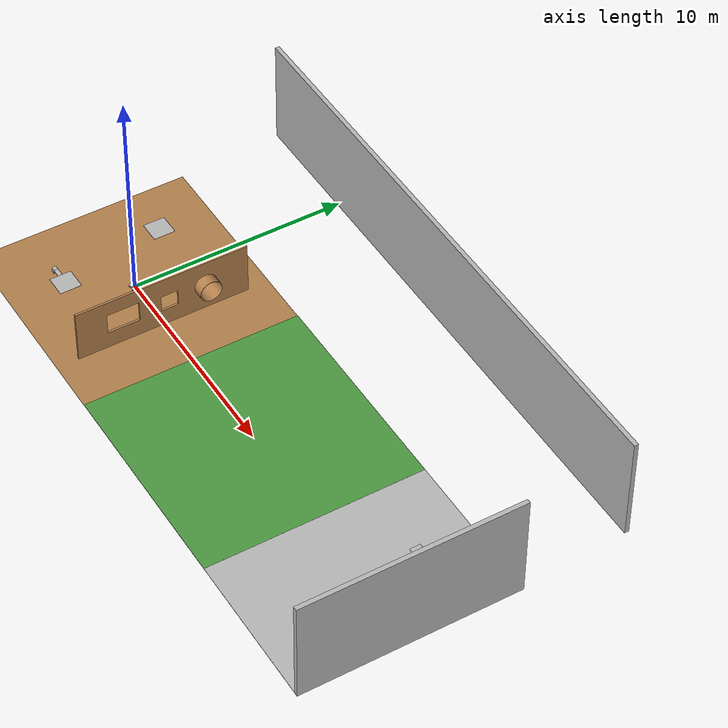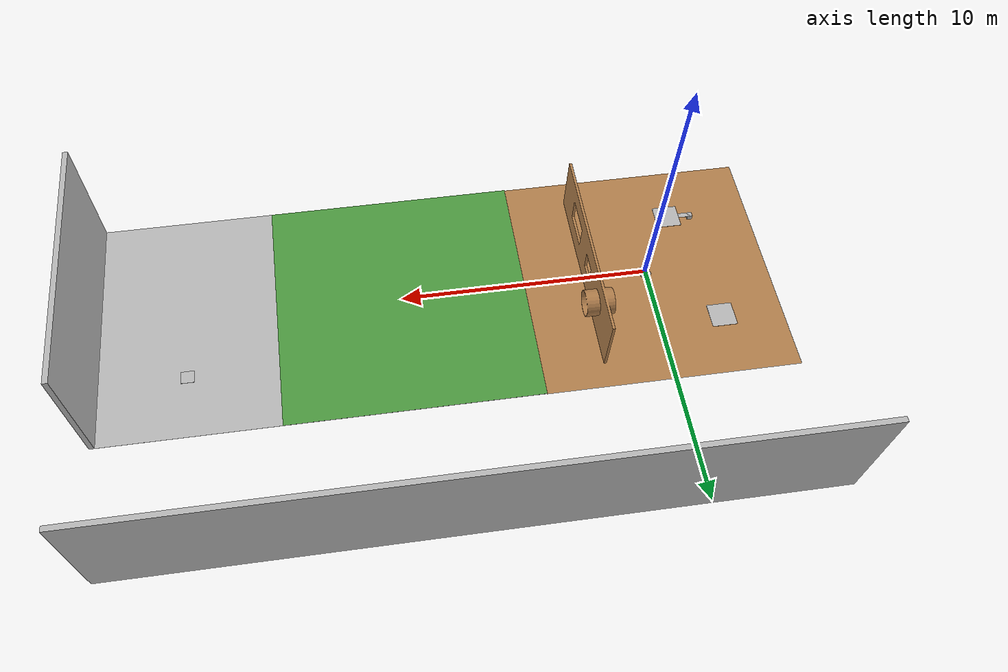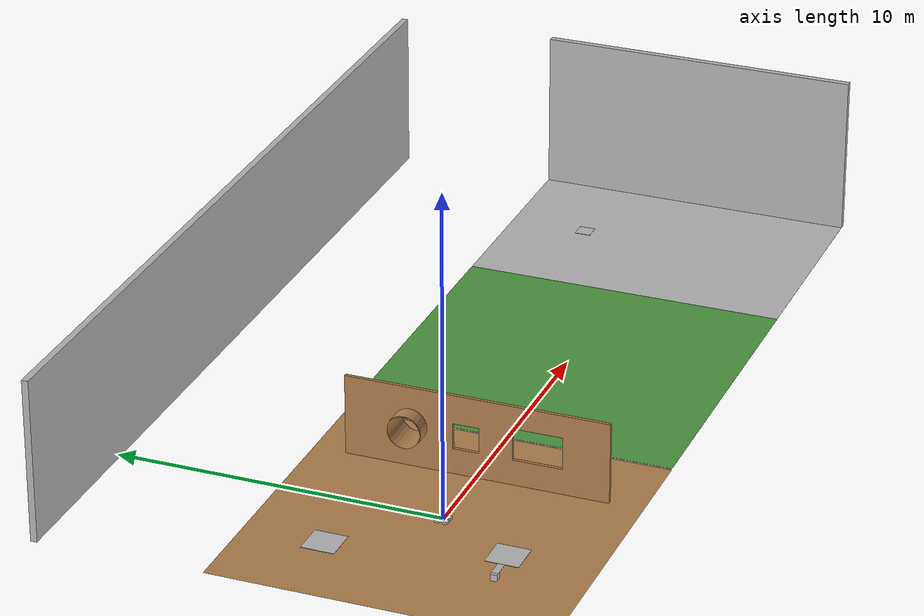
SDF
<sdf version="1.6">
 <world name="imav_world">
  <light name="sun" type="directional">
   <pose>0 10 0 0 0 -1.57079632679</pose>
   <diffuse>0.8 0.8 0.8 1</diffuse>
   <specular>0.2 0.2 0.2 1</specular>
   <attenuation>
    <range>1000</range>
    <constant>0.9</constant>
    <linear>0.01</linear>
    <quadratic>0.001</quadratic>
   </attenuation>
   <direction>-0.5 0.1 -0.9</direction>
  </light>
  <spherical_coordinates>
   <surface_model>EARTH_WGS84</surface_model>
   <latitude_deg>51.9906</latitude_deg>
   <longitude_deg>4.37679</longitude_deg>
   <elevation>0</elevation>
   <heading_deg>180</heading_deg>
  </spherical_coordinates>
  <physics type="ode">
   <max_step_size>0.001</max_step_size>
   <real_time_update_rate>0</real_time_update_rate>
  </physics>
  <gravity>0 0 -9.8</gravity>
  <scene>
   <ambient>0.4 0.4 0.4 1</ambient>
   <background>0.7 0.7 0.7 1</background>
   <sky><clouds><speed>12</speed></clouds></sky>
   <shadows>0</shadows>
   <grid>0</grid>
  </scene>
  <model name="takoff_landing_zone">
   <static>1</static>
   <link name="link">
    <collision name="collision">
     <geometry><plane><normal>0 0 1</normal><size>10 10</size></plane></geometry>
     <surface><friction><ode><mu>100</mu><mu2>50</mu2></ode></friction></surface>
    </collision>
    <visual name="visual">
     <cast_shadows>0</cast_shadows>
     <geometry><plane><normal>0 0 1</normal><size>10 10</size></plane></geometry>
     <material><script><name>Kitchen/WoodFloor</name></script></material>
    </visual>
    <velocity_decay><linear>0</linear><angular>0</angular></velocity_decay>
   </link>
  </model>
  <model name="obstacle_zone">
   <static>1</static>
   <pose>10.0 0.0 0 0 0 0</pose>
   <link name="link">
    <collision name="collision">
     <geometry><plane><normal>0 0 1</normal><size>10 10</size></plane></geometry>
     <surface><friction><ode><mu>100</mu><mu2>50</mu2></ode></friction></surface>
    </collision>
    <visual name="visual">
     <cast_shadows>0</cast_shadows>
     <geometry><plane><normal>0 0 1</normal><size>10 10</size></plane></geometry>
     <material><script><name>Kitchen/Grass</name></script></material>
    </visual>
    <velocity_decay><linear>0</linear><angular>0</angular></velocity_decay>
   </link>
  </model>
  <model name="target_zone">
   <static>1</static>
   <pose>18.5 0.0 0 0 0 0</pose>
   <link name="link">
    <collision name="collision">
     <geometry><plane><normal>0 0 1</normal><size>7 10</size></plane></geometry>
     <surface><friction><ode><mu>100</mu><mu2>50</mu2></ode></friction></surface>
    </collision>
    <visual name="visual">
     <cast_shadows>0</cast_shadows>
     <geometry><plane><normal>0 0 1</normal><size>7 10</size></plane></geometry>
     <material><script><name>Kitchen/CounterTop</name></script></material>
    </visual>
    <velocity_decay><linear>0</linear><angular>0</angular></velocity_decay>
   </link>
  </model>
  <model name="wall2">
   <static>1</static>
   <pose>2.5 0.5 0 0 0 -1.5708</pose>
   <link name="wall2_link">
    <inertial><mass>10000</mass></inertial>
    <visual name="visual">
     <geometry><mesh><uri>model://../world/xacro/wall.dae</uri><scale>0.1 0.1 0.1</scale></mesh></geometry>
     <material><script><name>Gazebo/Wood</name></script></material>
    </visual>
    <collision name="collision">
     <geometry><mesh><uri>model://../world/xacro/wall.dae</uri><scale>0.1 0.1 0.1</scale></mesh></geometry>
    </collision>
   </link>
  </model>
  <model name="branded_wall">
   <static>true</static>
   <pose>8.25 10 2.5 0 0 0</pose>
   <link name="wall_link">
    <inertial><mass>10000</mass></inertial>
    <collision name="wall_brand_collision">
     <geometry><box><size>27 0.2 5.0</size></box></geometry>
     <surface><contact><collide_bitmask>0x02</collide_bitmask></contact></surface>
    </collision>
    <visual name="wall_brand_visual">
     <geometry><box><size>27 0.2 5.0</size></box></geometry>
     <material>
      <script><uri>model://../world/xacro/custom.material</uri><name>MathWorks_branding</name></script>
     </material>
    </visual>
   </link>
  </model>
  <model name="branded_wall">
   <static>true</static>
   <pose>22.0 0 2.5 0 0 -1.5708</pose>
   <link name="wall_link">
    <inertial><mass>10000</mass></inertial>
    <collision name="wall_imav_collision">
     <geometry><box><size>10 0.2 5.0</size></box></geometry>
     <surface><contact><collide_bitmask>0x02</collide_bitmask></contact></surface>
    </collision>
    <visual name="wall_imav_visual">
     <geometry><box><size>10 0.2 5.0</size></box></geometry>
     <material>
      <script><uri>model://../world/xacro/custom.material</uri><name>imav_branding</name></script>
     </material>
    </visual>
   </link>
  </model>
  <model name="helipad_static">
   <static>true</static>
   <link name="helipad_link">
    <pose>-2.5 2.5 0.1 0 0 0</pose>
    <inertial><mass>10</mass></inertial>
    <collision name="wall_brand_collision">
     <geometry><box><size>1 1 0.01</size></box></geometry>
     <surface><contact><collide_bitmask>0x02</collide_bitmask></contact></surface>
    </collision>
    <visual name="helipad_visual">
     <geometry><box><size>1 1 0.01</size></box></geometry>
     <material><script><uri>model://../world/xacro/custom.material</uri><name>Helipad</name></script></material>
    </visual>
   </link>
  </model>
  <model name="helipad_mobile">
   <pose>-2.5 -2.5 0.1 0 0 0</pose>
   <joint name="helipad_fix0" type="fixed"><parent>world</parent><child>base</child></joint>
   <link name="base">
    <collision name="collision"><geometry><box><size>0.2 0.2 0.2</size></box></geometry></collision>
    <visual name="visual"><geometry><box><size>0.2 0.2 0.2</size></box></geometry></visual>
   </link>
   <joint name="helipad_joint" type="revolute">
    <pose>-0.5 0 0 0 0 0</pose>
    <parent>base</parent>
    <child>arm</child>
    <axis><xyz>0 0 1</xyz></axis>
    <physics><ode><velocity>1</velocity><max_force>1000</max_force></ode></physics>
   </joint>
   <link name="arm">
    <pose>0.5 0 0.095 0 0 0</pose>
    <collision name="collision"><geometry><box><size>1 0.2 0.01</size></box></geometry></collision>
    <visual name="visual"><geometry><box><size>1 0.2 0.01</size></box></geometry></visual>
   </link>
   <joint name="helipad_fix1" type="fixed"><parent>arm</parent><child>helipad_link</child></joint>
   <link name="helipad_link">
    <pose>1 0 0.1 0 0 0</pose>
    <inertial><mass>10</mass></inertial>
    <collision name="wall_brand_collision">
     <geometry><box><size>1 1 0.01</size></box></geometry>
     <surface><contact><collide_bitmask>0x02</collide_bitmask></contact></surface>
    </collision>
    <visual name="helipad_visual">
     <geometry><box><size>1 1 0.01</size></box></geometry>
     <material><script><uri>model://../world/xacro/custom.material</uri><name>Helipad</name></script></material>
    </visual>
   </link>
  </model>
  <model name="QR">
   <static>true</static>
   <link name="QR1_link">
    <pose>18.5 2.5 0.1 0 0 0</pose>
    <inertial><mass>10</mass></inertial>
    <collision name="qr_collision">
     <geometry><box><size>0.5 0.5 0.01</size></box></geometry>
     <surface><contact><collide_bitmask>0x02</collide_bitmask></contact></surface>
    </collision>
    <visual name="qr_visual">
     <geometry><box><size>0.5 0.5 0.01</size></box></geometry>
     <material><script><uri>file://../world/xacro/custom.material</uri><name>QR1</name></script></material>
    </visual>
   </link>
  </model>
  <include><uri>model://ardrone</uri></include>
 </world>
</sdf>

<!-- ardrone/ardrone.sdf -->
<sdf version='1.4'>
	<model name="paparazzi_uav">
		<pose>0 0 .1 0 0 0</pose>

		<link name="chassis">
			<inertial><!-- Taken from Paparazzi's ARDrone model for JSBsim -->
				<mass>0.4</mass>
				<inertia>
					<ixx> 0.005 </ixx>
					<iyy> 0.005 </iyy>
					<izz> 0.010 </izz>
					<ixy> 0. </ixy>
					<ixz> 0. </ixz>
					<iyz> 0. </iyz>
				</inertia>
			</inertial>

			<collision name="collision">
				<geometry>
					<box>
						<size>.4 .4 .05</size>
					</box>
				</geometry>
			</collision>

			<visual name="visual">
				<geometry>
					<box>
						<size>.2 .2 .05</size>
					</box>
				</geometry>
			</visual>

			<sensor name="contactsensor" type="contact">
				<contact>
					<collision>collision</collision>
				</contact>
			</sensor>
		</link>

<!-- MOTORS -->

		<link name="nw_motor">
			<pose>0.12 0.12 0 0 0 0</pose>
			<inertial>
				<mass>0.01</mass>
				<inertia>
					<ixx>.0001</ixx>
					<iyy>.0001</iyy>
					<izz>.0001</izz>
					<ixy>0</ixy>
					<iyz>0</iyz>
					<ixz>0</ixz>
				</inertia>
			</inertial>
			<visual name="visual">
				<geometry>
					<cylinder>
						<radius>0.10</radius>
						<length>.07</length>
					</cylinder>
				</geometry>
			</visual>
		</link>

		<joint type="fixed" name="nw_motor_joint">
			<parent>chassis</parent>
			<child>nw_motor</child>
		</joint>

		<link name="se_motor">
			<pose>-0.12 -0.12 0 0 0 0</pose>
			<inertial>
				<mass>0.01</mass>
				<inertia>
					<ixx>.0001</ixx>
					<iyy>.0001</iyy>
					<izz>.0001</izz>
					<ixy>0</ixy>
					<iyz>0</iyz>
					<ixz>0</ixz>
				</inertia>
			</inertial>
			<visual name="visual">
				<geometry>
					<cylinder>
						<radius>0.10</radius>
						<length>.07</length>
					</cylinder>
				</geometry>
			</visual>
		</link>

		<joint type="fixed" name="se_motor_joint">
			<parent>chassis</parent>
			<child>se_motor</child>
		</joint>

		<link name="ne_motor">
			<pose>0.12 -0.12 0 0 0 0</pose>
			<inertial>
				<mass>0.01</mass>
				<inertia>
					<ixx>.0001</ixx>
					<iyy>.0001</iyy>
					<izz>.0001</izz>
					<ixy>0</ixy>
					<iyz>0</iyz>
					<ixz>0</ixz>
				</inertia>
			</inertial>
			<visual name="visual">
				<geometry>
					<cylinder>
						<radius>0.10</radius>
						<length>.07</length>
					</cylinder>
				</geometry>
			</visual>
		</link>

		<joint type="fixed" name="ne_motor_joint">
			<parent>chassis</parent>
			<child>ne_motor</child>
		</joint>

		<link name="sw_motor">
			<pose>-0.12 0.12 0 0 0 0</pose>
			<inertial>
				<mass>0.01</mass>
				<inertia>
					<ixx>.0001</ixx>
					<iyy>.0001</iyy>
					<izz>.0001</izz>
					<ixy>0</ixy>
					<iyz>0</iyz>
					<ixz>0</ixz>
				</inertia>
			</inertial>
			<visual name="visual">
				<geometry>
					<cylinder>
						<radius>0.10</radius>
						<length>.07</length>
					</cylinder>
				</geometry>
			</visual>
		</link>

		<joint type="fixed" name="sw_motor_joint">
			<parent>chassis</parent>
			<child>sw_motor</child>
		</joint>

		<!-- CAMERAS -->

		<link name="front_camera">
			<pose>0.15 0 0 0 0 0</pose>
			<inertial>
				<mass>0.001</mass>
				<inertia>
					<ixx>.0001</ixx>
					<iyy>.0001</iyy>
					<izz>.0001</izz>
					<ixy>0</ixy>
					<iyz>0</iyz>
					<ixz>0</ixz>
				</inertia>
			</inertial>
			<sensor type="camera" name="front_camera">
				<update_rate>30.0</update_rate>
				<camera name="front_camera">
					<horizontal_fov>1.3962634</horizontal_fov>
					<image>
						<width>1280</width>
						<height>720</height>
						<format>R8G8B8</format>
					</image>
					<clip>
						<near>0.02</near>
						<far>300</far>
					</clip>
					<noise>
						<type>gaussian</type>
						<!-- Noise is sampled independently per pixel on each frame. That pixel's
							noise value is added to each of its color channels, which at that point lie
							in the range [0,1]. -->
						<mean>0.0</mean>
						<stddev>0.007</stddev>
					</noise>
				</camera>
			</sensor>
		</link>

		<joint name="front_camera_joint" type="fixed">
			<parent>chassis</parent>
			<child>front_camera</child>
		</joint>

		<link name="bottom_camera">
			<pose>0 0 -.03 0 1.57 0</pose>
			<inertial>
				<mass>0.001</mass>
				<inertia>
					<ixx>.0001</ixx>
					<iyy>.0001</iyy>
					<izz>.0001</izz>
					<ixy>0</ixy>
					<iyz>0</iyz>
					<ixz>0</ixz>
				</inertia>
			</inertial>
			<sensor type="camera" name="bottom_camera">
				<update_rate>30.0</update_rate>
				<camera name="bottom_camera">
					<horizontal_fov>1.3962634</horizontal_fov>
					<image>
						<width>320</width>
						<height>240</height>
						<format>R8G8B8</format>
					</image>
					<clip>
						<near>0.02</near>
						<far>300</far>
					</clip>
					<noise>
						<type>gaussian</type>
						<!-- Noise is sampled independently per pixel on each frame. That pixel's
							noise value is added to each of its color channels, which at that point lie
							in the range [0,1]. -->
						<mean>0.0</mean>
						<stddev>0.007</stddev>
					</noise>
				</camera>
			</sensor>
		</link>

		<joint name="bottom_camera_joint" type="fixed">
			<parent>chassis</parent>
			<child>bottom_camera</child>
		</joint>

<!-- RANGE SENSORS -->

    <include>
      <uri>model://range_sensors</uri>
      <pose>0 0 0 0 0 0</pose>
    </include>

		<joint name="range_sensor_joint" type="fixed">
			<parent>chassis</parent>
			<child>range_sensors::base</child>
		</joint>

<!-- STEREOCAMERA -->

    <include>
      <uri>model://stereo_camera</uri>
      <pose>0 0 0 0 0 0</pose>
    </include>

		<joint name="stereo_camera_joint" type="fixed">
			<parent>chassis</parent>
			<child>stereo_camera::base</child>
		</joint>

	</model>
</sdf>

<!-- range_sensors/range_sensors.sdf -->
<sdf version='1.4'>
	<model name="range_sensors">

		<link name="base">
			<inertial><!-- Taken from Paparazzi's ARDrone model for JSBsim -->
				<mass>0.001</mass>
				<inertia>
					<ixx> 0.005 </ixx>
					<iyy> 0.005 </iyy>
					<izz> 0.010 </izz>
					<ixy> 0. </ixy>
					<ixz> 0. </ixz>
					<iyz> 0. </iyz>
				</inertia>
			</inertial>

			<collision name="collision">
				<geometry>
					<box>
						<size>.4 .4 .05</size>
					</box>
				</geometry>
			</collision>

		</link>

<!-- RANGE SENSORS -->

    <link name="down_range_sensor">
			<pose>0.0 0 0 0 1.57 0</pose>
			<inertial>
				<mass>0.001</mass>
				<inertia>
					<ixx>.0001</ixx>
					<iyy>.0001</iyy>
					<izz>.0001</izz>
					<ixy>0</ixy>
					<iyz>0</iyz>
					<ixz>0</ixz>
				</inertia>
			</inertial>
      <sensor type= "ray" name="down_range_sensor">
        <visualize>true</visualize>
        <update_rate>30</update_rate>
					<ray>
						<range>
							<min>0.05</min>
							<max>2</max>
							<resolution>0.02</resolution>
						</range>
					</ray>
      </sensor>
    </link>

		<joint name="down_range_sensor_joint" type="fixed">
			<parent>base</parent>
			<child>down_range_sensor</child>
		</joint>

    <link name="up_range_sensor">
			<pose>0.0 0 0 0 -1.57 0</pose>
			<inertial>
				<mass>0.001</mass>
				<inertia>
					<ixx>.0001</ixx>
					<iyy>.0001</iyy>
					<izz>.0001</izz>
					<ixy>0</ixy>
					<iyz>0</iyz>
					<ixz>0</ixz>
				</inertia>
			</inertial>
      <sensor type= "ray" name="up_range_sensor">
        <visualize>true</visualize>
        <update_rate>30</update_rate>
					<ray>
						<range>
							<min>0.05</min>
							<max>2</max>
							<resolution>0.02</resolution>
						</range>
					</ray>
      </sensor>
    </link>

		<joint name="up_range_sensor_joint" type="fixed">
			<parent>base</parent>
			<child>up_range_sensor</child>
		</joint>

    <link name="left_range_sensor">
			<pose>0.0 0 0.15 0 0 1.57</pose>
			<inertial>
				<mass>0.001</mass>
				<inertia>
					<ixx>.0001</ixx>
					<iyy>.0001</iyy>
					<izz>.0001</izz>
					<ixy>0</ixy>
					<iyz>0</iyz>
					<ixz>0</ixz>
				</inertia>
			</inertial>
      <sensor type= "ray" name="left_range_sensor">
        <visualize>true</visualize>
        <update_rate>30</update_rate>
					<ray>
						<range>
							<min>0.05</min>
							<max>2</max>
							<resolution>0.02</resolution>
						</range>
					</ray>
      </sensor>
    </link>

		<joint name="left_range_sensor_joint" type="fixed">
			<parent>base</parent>
			<child>left_range_sensor</child>
		</joint>

    <link name="right_range_sensor">
			<pose>0.0 0 0.15 0 0 -1.57</pose>
			<inertial>
				<mass>0.001</mass>
				<inertia>
					<ixx>.0001</ixx>
					<iyy>.0001</iyy>
					<izz>.0001</izz>
					<ixy>0</ixy>
					<iyz>0</iyz>
					<ixz>0</ixz>
				</inertia>
			</inertial>
      <sensor type= "ray" name="right_range_sensor">
        <visualize>true</visualize>
        <update_rate>30</update_rate>
					<ray>
						<range>
							<min>0.05</min>
							<max>2</max>
							<resolution>0.02</resolution>
						</range>
					</ray>
      </sensor>
    </link>

		<joint name="right_range_sensor_joint" type="fixed">
			<parent>base</parent>
			<child>right_range_sensor</child>
		</joint>

    <link name="front_range_sensor">
			<pose>0.0 0 0.15 0 0 0</pose>
			<inertial>
				<mass>0.001</mass>
				<inertia>
					<ixx>.0001</ixx>
					<iyy>.0001</iyy>
					<izz>.0001</izz>
					<ixy>0</ixy>
					<iyz>0</iyz>
					<ixz>0</ixz>
				</inertia>
			</inertial>
      <sensor type= "ray" name="front_range_sensor">
        <visualize>true</visualize>
        <update_rate>30</update_rate>
					<ray>
						<range>
							<min>0.05</min>
							<max>2</max>
							<resolution>0.02</resolution>
						</range>
					</ray>
      </sensor>
    </link>

		<joint name="front_range_sensor_joint" type="fixed">
			<parent>base</parent>
			<child>front_range_sensor</child>
		</joint>

    <link name="back_range_sensor">
			<pose>0.0 0 0.15 0 0 3.14</pose>
			<inertial>
				<mass>0.001</mass>
				<inertia>
					<ixx>.0001</ixx>
					<iyy>.0001</iyy>
					<izz>.0001</izz>
					<ixy>0</ixy>
					<iyz>0</iyz>
					<ixz>0</ixz>
				</inertia>
			</inertial>
      <sensor type= "ray" name="back_range_sensor">
        <visualize>true</visualize>
        <update_rate>30</update_rate>
					<ray>
						<range>
							<min>0.05</min>
							<max>2</max>
							<resolution>0.02</resolution>
						</range>
					</ray>
      </sensor>
    </link>

		<joint name="back_range_sensor" type="fixed">
			<parent>base</parent>
			<child>back_range_sensor</child>
		</joint>

	</model>
</sdf>

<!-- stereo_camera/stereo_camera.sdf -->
<sdf version='1.4'>
	<model name="stereo_camera">

		<link name="base">
			<inertial><!-- Taken from Paparazzi's ARDrone model for JSBsim -->
				<mass>0.001</mass>
				<inertia>
					<ixx> 0.005 </ixx>
					<iyy> 0.005 </iyy>
					<izz> 0.010 </izz>
					<ixy> 0. </ixy>
					<ixz> 0. </ixz>
					<iyz> 0. </iyz>
				</inertia>
			</inertial>

			<collision name="collision">
				<geometry>
					<box>
						<size>.4 .4 .05</size>
					</box>
				</geometry>
			</collision>

		</link>

<!-- STEREO CAMERA -->
		<link name="stereo_camera">
			<pose>0.15 0 0 0 0 0</pose>
			<inertial>
				<mass>0.001</mass>
				<inertia>
					<ixx>.0001</ixx>
					<iyy>.0001</iyy>
					<izz>.0001</izz>
					<ixy>0</ixy>
					<iyz>0</iyz>
					<ixz>0</ixz>
				</inertia>
			</inertial>
     <sensor type="multicamera" name="stereo_camera">
      <update_rate>25.0</update_rate>
      <camera name="left">
        <pose>0 0.03 0 0 0 0</pose>
        <horizontal_fov>1.001819 </horizontal_fov>
        <image>
						<width>128</width>
						<height>96</height>
          <format>R8G8B8</format>
        </image>
        <clip>
          <near>0.02</near>
          <far>300</far>
        </clip>
        <noise>
          <type>gaussian</type>
          <mean>0.0</mean>
          <stddev>0.02</stddev>
        </noise>
      </camera>
      <camera name="right">
        <pose>0 -0.03 0 0 0 0</pose>
        <horizontal_fov>1.001819 </horizontal_fov>
        <image>
						<width>128</width>
						<height>96</height>
          <format>R8G8B8</format>
        </image>
        <clip>
          <near>0.02</near>
          <far>300</far>
        </clip>
        <noise>
          <type>gaussian</type>
          <mean>0.0</mean>
          <stddev>0.02</stddev>
        </noise>
      </camera>
			</sensor>
		</link>

		<joint name="stereo_camera_joint" type="fixed">
			<parent>base</parent>
			<child>stereo_camera</child>
		</joint>

	</model>
</sdf>
